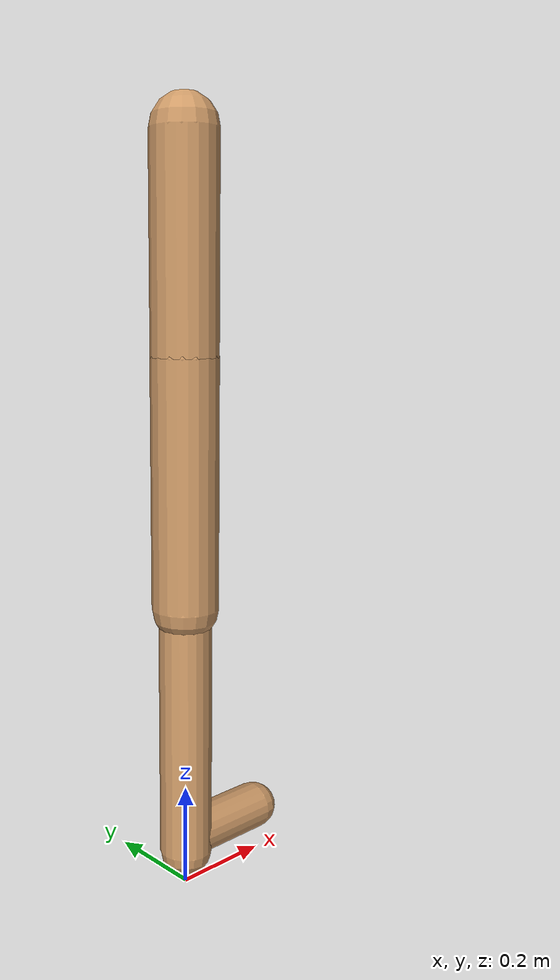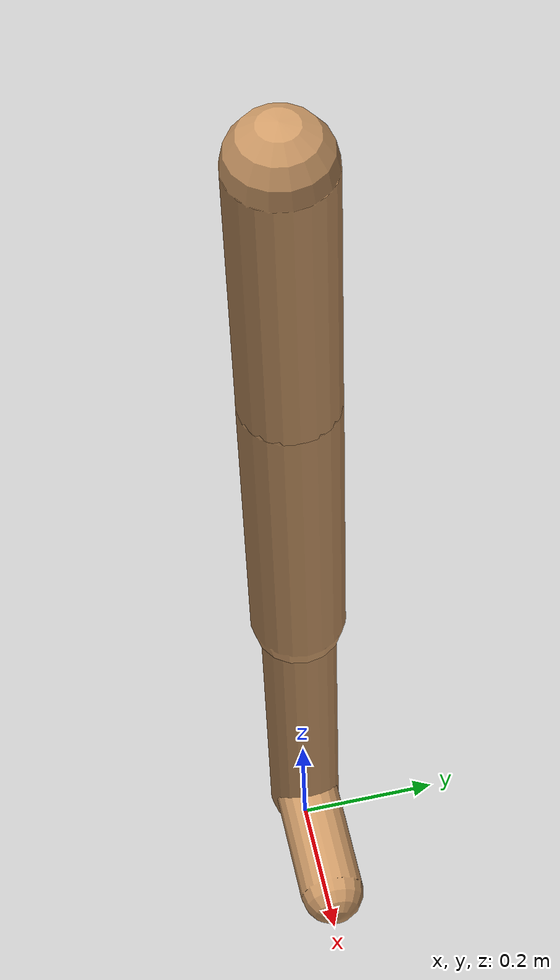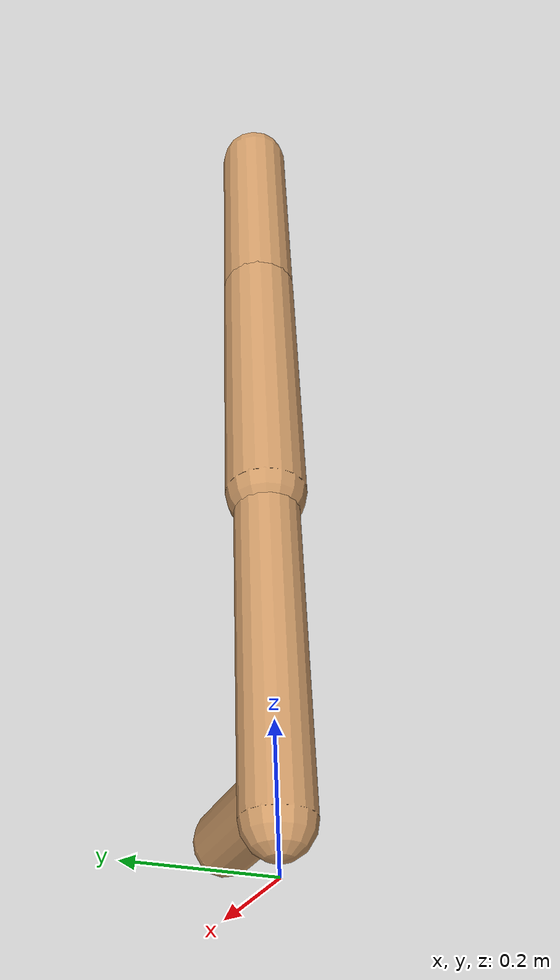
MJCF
<mujoco model="walker2d">
  <compiler angle="degree" coordinate="global" inertiafromgeom="true" />
  <default>
    <joint armature="0.01" damping=".1" limited="true" />
    <geom conaffinity="0" condim="3" contype="1" density="1000" friction="0.8 .1 .1" rgba="0.8 0.6 .4 1" />
  </default>
  <option integrator="RK4" timestep="0.002" />
  <worldbody>

    <body name="torso" pos="0 0 0.05780633768759555">
      <joint armature="0" axis="1 0 0" damping="0" limited="false" name="ignorex" pos="0 0 0" stiffness="0" type="slide" />
      <joint armature="0" axis="0 0 1" damping="0" limited="false" name="ignorez" pos="0 0 0" ref="1.25" stiffness="0" type="slide" />
      <joint armature="0" axis="0 1 0" damping="0" limited="false" name="ignorey" pos="0 0 0" stiffness="0" type="hinge" />
      <geom fromto="0 0 1.45 0 0 1.05" name="torso_geom" size="0.06435976842998065" type="capsule" />
      <body name="thigh">
        <joint axis="0 -1 0" name="thigh_joint" pos="0 0 1.05" range="-150 0" type="hinge" />
        <geom fromto="0.0 0.0 1.05 0.0 0.0 0.5726180505690337" name="thigh_geom" size="0.06469057717856581" type="capsule" />
        <body name="leg" pos="0.0 0.0 -0.02738194943096628">
          <joint axis="0 -1 0" name="leg_joint" pos="0 0 0.6" range="-150 0" type="hinge" />
          <geom fromto="0.0 0.0 0.6 0.0 0.0 0.06957561174337076" name="leg_geom" size="0.05175246174285265" type="capsule" />
          <body name="foot" pos="0.0 0.0 -0.030424388256629242">
            <joint axis="0 -1 0" name="foot_joint" pos="0 0 0.1" range="-45 45" type="hinge" />
            <geom fromto="0.0 0.0 0.1 0.19086640065244428 0.0 0.1" name="foot_geom" size="0.046502548447446924" type="capsule" />
          </body>
        </body>
      </body>

      <body name="thigh_left">
        <joint axis="0 -1 0" name="thigh_left_joint" pos="0 0 1.05" range="-150 0" type="hinge" />
        <geom fromto="0.0 0.0 1.05 0.0 0.0 0.5726180505690337" name="thigh_left_geom" rgba=".7 .3 .6 1" size="0.06469057717856581" type="capsule" />
        <body name="leg_left" pos="0.0 0.0 -0.02738194943096628">
          <joint axis="0 -1 0" name="leg_left_joint" pos="0 0 0.6" range="-150 0" type="hinge" />
          <geom fromto="0.0 0.0 0.6 0.0 0.0 0.06957561174337076" name="leg_left_geom" rgba=".7 .3 .6 1" size="0.05175246174285265" type="capsule" />
          <body name="foot_left" pos="0.0 0.0 -0.030424388256629242">
            <joint axis="0 -1 0" name="foot_left_joint" pos="0 0 0.1" range="-45 45" type="hinge" />
            <geom fromto="0.0 0.0 0.1 0.19086640065244428 0.0 0.1" name="foot_left_geom" rgba=".7 .3 .6 1" size="0.046502548447446924" type="capsule" />
          </body>
        </body>
      </body>
    </body>
  </worldbody>
  <actuator>

    <motor ctrllimited="true" ctrlrange="-1.0 1.0" gear="100" joint="thigh_joint" />
    <motor ctrllimited="true" ctrlrange="-1.0 1.0" gear="100" joint="leg_joint" />
    <motor ctrllimited="true" ctrlrange="-1.0 1.0" gear="100" joint="foot_joint" />
    <motor ctrllimited="true" ctrlrange="-1.0 1.0" gear="100" joint="thigh_left_joint" />
    <motor ctrllimited="true" ctrlrange="-1.0 1.0" gear="100" joint="leg_left_joint" />
    <motor ctrllimited="true" ctrlrange="-1.0 1.0" gear="100" joint="foot_left_joint" />

  </actuator>
</mujoco>
